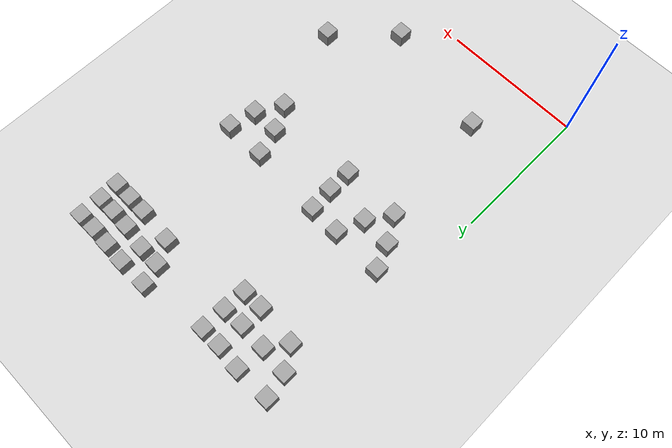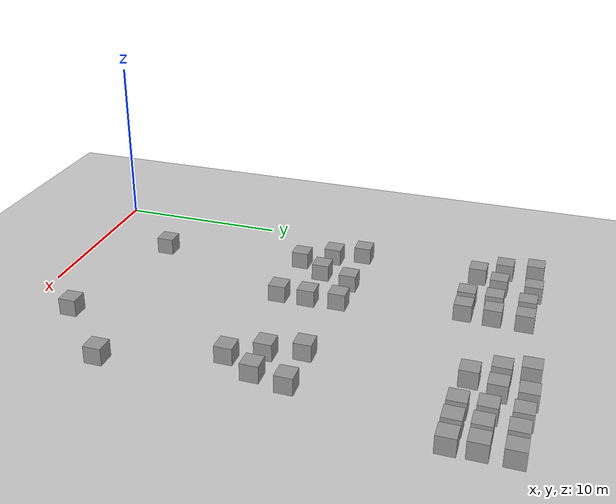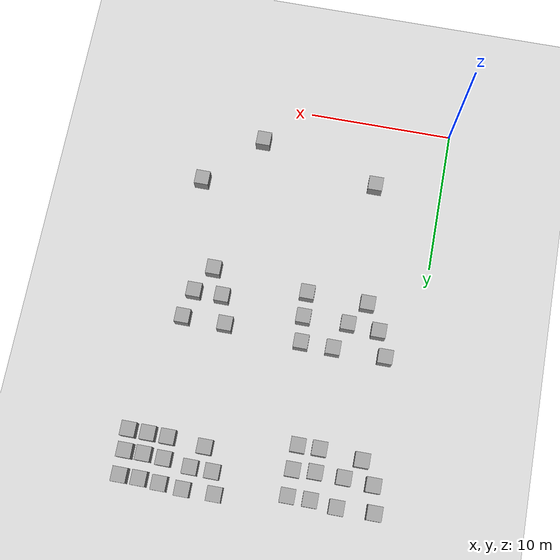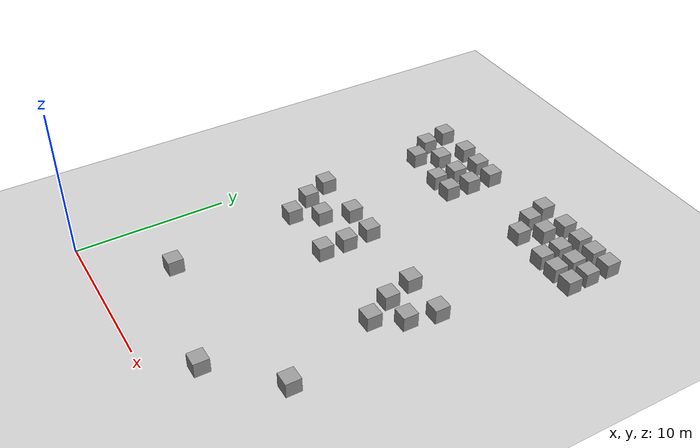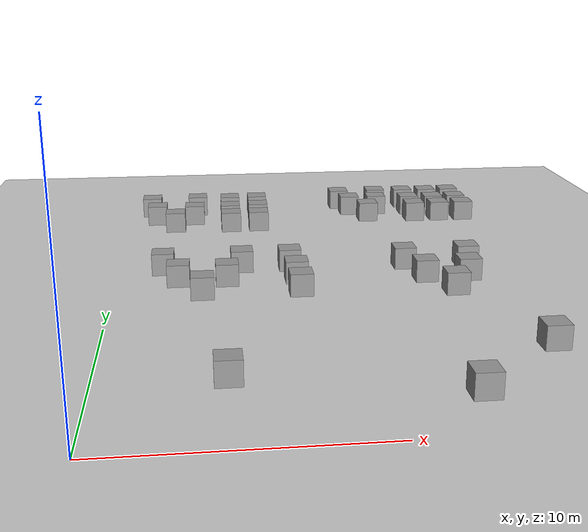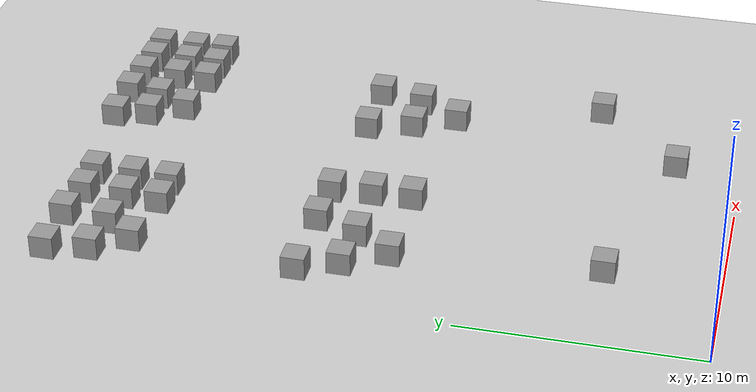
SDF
<sdf version="1.7">
 <world name="default">
  <model name="ground_plane">
   <static>1</static>
   <link name="link">
    <collision name="collision">
     <geometry><plane><normal>0 0 1</normal><size>100 100</size></plane></geometry>
     <surface>
      <contact><collide_bitmask>65535</collide_bitmask></contact>
      <friction><ode><mu>100</mu><mu2>50</mu2></ode></friction>
     </surface>
    </collision>
    <visual name="visual">
     <cast_shadows>0</cast_shadows>
     <geometry><plane><normal>0 0 1</normal><size>100 100</size></plane></geometry>
     <material>
      <script><uri>file://media/materials/scripts/gazebo.material</uri><name>Gazebo/Grey</name></script>
     </material>
    </visual>
   </link>
  </model>
  <model name="unit_box">
   <pose>4.67216 4.73049 0.499995 -1e-05 0 0</pose>
   <link name="link">
    <inertial>
     <mass>1</mass>
     <inertia>
      <ixx>0.166667</ixx>
      <ixy>0</ixy>
      <ixz>0</ixz>
      <iyy>0.166667</iyy>
      <iyz>0</iyz>
      <izz>0.166667</izz>
     </inertia>
    </inertial>
    <collision name="collision"><geometry><box><size>1 1 1</size></box></geometry></collision>
    <visual name="visual">
     <geometry><box><size>1 1 1</size></box></geometry>
     <material>
      <script><name>Gazebo/Grey</name><uri>file://media/materials/scripts/gazebo.material</uri></script>
     </material>
    </visual>
   </link>
  </model>
  <model name="unit_box_0">
   <pose>13.043 2.79597 0.499995 0 -1e-05 0</pose>
   <link name="link">
    <inertial>
     <mass>1</mass>
     <inertia>
      <ixx>0.166667</ixx>
      <ixy>0</ixy>
      <ixz>0</ixz>
      <iyy>0.166667</iyy>
      <iyz>0</iyz>
      <izz>0.166667</izz>
     </inertia>
    </inertial>
    <collision name="collision"><geometry><box><size>1 1 1</size></box></geometry></collision>
    <visual name="visual">
     <geometry><box><size>1 1 1</size></box></geometry>
     <material>
      <script><name>Gazebo/Grey</name><uri>file://media/materials/scripts/gazebo.material</uri></script>
     </material>
    </visual>
   </link>
  </model>
  <model name="unit_box_1">
   <pose>16.769 6.47067 0.499995 -1e-05 0 0</pose>
   <link name="link">
    <inertial>
     <mass>1</mass>
     <inertia>
      <ixx>0.166667</ixx>
      <ixy>0</ixy>
      <ixz>0</ixz>
      <iyy>0.166667</iyy>
      <iyz>0</iyz>
      <izz>0.166667</izz>
     </inertia>
    </inertial>
    <collision name="collision"><geometry><box><size>1 1 1</size></box></geometry></collision>
    <visual name="visual">
     <geometry><box><size>1 1 1</size></box></geometry>
     <material>
      <script><name>Gazebo/Grey</name><uri>file://media/materials/scripts/gazebo.material</uri></script>
     </material>
    </visual>
   </link>
  </model>
  <model name="unit_box_1_clone_9">
   <pose>13.1558 16.4643 0.499995 0 -1e-05 0</pose>
   <link name="link">
    <inertial>
     <mass>1</mass>
     <inertia>
      <ixx>0.166667</ixx>
      <ixy>0</ixy>
      <ixz>0</ixz>
      <iyy>0.166667</iyy>
      <iyz>0</iyz>
      <izz>0.166667</izz>
     </inertia>
    </inertial>
    <collision name="collision"><geometry><box><size>1 1 1</size></box></geometry></collision>
    <visual name="visual">
     <geometry><box><size>1 1 1</size></box></geometry>
     <material>
      <script><name>Gazebo/Grey</name><uri>file://media/materials/scripts/gazebo.material</uri></script>
     </material>
    </visual>
   </link>
  </model>
  <model name="unit_box_1_clone_10">
   <pose>16.0976 16.4593 0.499995 -1e-05 -0 0</pose>
   <link name="link">
    <inertial>
     <mass>1</mass>
     <inertia>
      <ixx>0.166667</ixx>
      <ixy>0</ixy>
      <ixz>0</ixz>
      <iyy>0.166667</iyy>
      <iyz>0</iyz>
      <izz>0.166667</izz>
     </inertia>
    </inertial>
    <collision name="collision"><geometry><box><size>1 1 1</size></box></geometry></collision>
    <visual name="visual">
     <geometry><box><size>1 1 1</size></box></geometry>
     <material>
      <script><name>Gazebo/Grey</name><uri>file://media/materials/scripts/gazebo.material</uri></script>
     </material>
    </visual>
   </link>
  </model>
  <model name="unit_box_1_clone_11">
   <pose>13.7413 14.5337 0.499995 0 -1e-05 0</pose>
   <link name="link">
    <inertial>
     <mass>1</mass>
     <inertia>
      <ixx>0.166667</ixx>
      <ixy>0</ixy>
      <ixz>0</ixz>
      <iyy>0.166667</iyy>
      <iyz>0</iyz>
      <izz>0.166667</izz>
     </inertia>
    </inertial>
    <collision name="collision"><geometry><box><size>1 1 1</size></box></geometry></collision>
    <visual name="visual">
     <geometry><box><size>1 1 1</size></box></geometry>
     <material>
      <script><name>Gazebo/Grey</name><uri>file://media/materials/scripts/gazebo.material</uri></script>
     </material>
    </visual>
   </link>
  </model>
  <model name="unit_box_1_clone_12">
   <pose>15.7018 14.5391 0.499995 -1e-05 0 0</pose>
   <link name="link">
    <inertial>
     <mass>1</mass>
     <inertia>
      <ixx>0.166667</ixx>
      <ixy>0</ixy>
      <ixz>0</ixz>
      <iyy>0.166667</iyy>
      <iyz>0</iyz>
      <izz>0.166667</izz>
     </inertia>
    </inertial>
    <collision name="collision"><geometry><box><size>1 1 1</size></box></geometry></collision>
    <visual name="visual">
     <geometry><box><size>1 1 1</size></box></geometry>
     <material>
      <script><name>Gazebo/Grey</name><uri>file://media/materials/scripts/gazebo.material</uri></script>
     </material>
    </visual>
   </link>
  </model>
  <model name="unit_box_1_clone_13">
   <pose>14.6841 12.7445 0.499995 0 -1e-05 0</pose>
   <link name="link">
    <inertial>
     <mass>1</mass>
     <inertia>
      <ixx>0.166667</ixx>
      <ixy>0</ixy>
      <ixz>0</ixz>
      <iyy>0.166667</iyy>
      <iyz>0</iyz>
      <izz>0.166667</izz>
     </inertia>
    </inertial>
    <collision name="collision"><geometry><box><size>1 1 1</size></box></geometry></collision>
    <visual name="visual">
     <geometry><box><size>1 1 1</size></box></geometry>
     <material>
      <script><name>Gazebo/Grey</name><uri>file://media/materials/scripts/gazebo.material</uri></script>
     </material>
    </visual>
   </link>
  </model>
  <model name="unit_box_1_clone_14">
   <pose>2.08488 16.7896 0.499995 -1e-05 -0 0</pose>
   <link name="link">
    <inertial>
     <mass>1</mass>
     <inertia>
      <ixx>0.166667</ixx>
      <ixy>0</ixy>
      <ixz>0</ixz>
      <iyy>0.166667</iyy>
      <iyz>0</iyz>
      <izz>0.166667</izz>
     </inertia>
    </inertial>
    <collision name="collision"><geometry><box><size>1 1 1</size></box></geometry></collision>
    <visual name="visual">
     <geometry><box><size>1 1 1</size></box></geometry>
     <material>
      <script><name>Gazebo/Grey</name><uri>file://media/materials/scripts/gazebo.material</uri></script>
     </material>
    </visual>
   </link>
  </model>
  <model name="unit_box_1_clone_15">
   <pose>2.79814 15.0909 0.499995 -1e-05 -0 0</pose>
   <link name="link">
    <inertial>
     <mass>1</mass>
     <inertia>
      <ixx>0.166667</ixx>
      <ixy>0</ixy>
      <ixz>0</ixz>
      <iyy>0.166667</iyy>
      <iyz>0</iyz>
      <izz>0.166667</izz>
     </inertia>
    </inertial>
    <collision name="collision"><geometry><box><size>1 1 1</size></box></geometry></collision>
    <visual name="visual">
     <geometry><box><size>1 1 1</size></box></geometry>
     <material>
      <script><name>Gazebo/Grey</name><uri>file://media/materials/scripts/gazebo.material</uri></script>
     </material>
    </visual>
   </link>
  </model>
  <model name="unit_box_1_clone_16">
   <pose>3.84151 13.3265 0.499995 -1e-05 -0 0</pose>
   <link name="link">
    <inertial>
     <mass>1</mass>
     <inertia>
      <ixx>0.166667</ixx>
      <ixy>0</ixy>
      <ixz>0</ixz>
      <iyy>0.166667</iyy>
      <iyz>0</iyz>
      <izz>0.166667</izz>
     </inertia>
    </inertial>
    <collision name="collision"><geometry><box><size>1 1 1</size></box></geometry></collision>
    <visual name="visual">
     <geometry><box><size>1 1 1</size></box></geometry>
     <material>
      <script><name>Gazebo/Grey</name><uri>file://media/materials/scripts/gazebo.material</uri></script>
     </material>
    </visual>
   </link>
  </model>
  <model name="unit_box_1_clone_17">
   <pose>4.9272 14.9407 0.499995 0 -1e-05 0</pose>
   <link name="link">
    <inertial>
     <mass>1</mass>
     <inertia>
      <ixx>0.166667</ixx>
      <ixy>0</ixy>
      <ixz>0</ixz>
      <iyy>0.166667</iyy>
      <iyz>0</iyz>
      <izz>0.166667</izz>
     </inertia>
    </inertial>
    <collision name="collision"><geometry><box><size>1 1 1</size></box></geometry></collision>
    <visual name="visual">
     <geometry><box><size>1 1 1</size></box></geometry>
     <material>
      <script><name>Gazebo/Grey</name><uri>file://media/materials/scripts/gazebo.material</uri></script>
     </material>
    </visual>
   </link>
  </model>
  <model name="unit_box_1_clone_18">
   <pose>5.65343 16.785 0.499995 -1e-05 0 0</pose>
   <link name="link">
    <inertial>
     <mass>1</mass>
     <inertia>
      <ixx>0.166667</ixx>
      <ixy>0</ixy>
      <ixz>0</ixz>
      <iyy>0.166667</iyy>
      <iyz>0</iyz>
      <izz>0.166667</izz>
     </inertia>
    </inertial>
    <collision name="collision"><geometry><box><size>1 1 1</size></box></geometry></collision>
    <visual name="visual">
     <geometry><box><size>1 1 1</size></box></geometry>
     <material>
      <script><name>Gazebo/Grey</name><uri>file://media/materials/scripts/gazebo.material</uri></script>
     </material>
    </visual>
   </link>
  </model>
  <model name="unit_box_1_clone_19">
   <pose>7.85351 16.7659 0.499995 0 -1e-05 0</pose>
   <link name="link">
    <inertial>
     <mass>1</mass>
     <inertia>
      <ixx>0.166667</ixx>
      <ixy>0</ixy>
      <ixz>0</ixz>
      <iyy>0.166667</iyy>
      <iyz>0</iyz>
      <izz>0.166667</izz>
     </inertia>
    </inertial>
    <collision name="collision"><geometry><box><size>1 1 1</size></box></geometry></collision>
    <visual name="visual">
     <geometry><box><size>1 1 1</size></box></geometry>
     <material>
      <script><name>Gazebo/Grey</name><uri>file://media/materials/scripts/gazebo.material</uri></script>
     </material>
    </visual>
   </link>
  </model>
  <model name="unit_box_1_clone_20">
   <pose>8 15 0.499995 -1e-05 -0 0</pose>
   <link name="link">
    <inertial>
     <mass>1</mass>
     <inertia>
      <ixx>0.166667</ixx>
      <ixy>0</ixy>
      <ixz>0</ixz>
      <iyy>0.166667</iyy>
      <iyz>0</iyz>
      <izz>0.166667</izz>
     </inertia>
    </inertial>
    <collision name="collision"><geometry><box><size>1 1 1</size></box></geometry></collision>
    <visual name="visual">
     <geometry><box><size>1 1 1</size></box></geometry>
     <material>
      <script><name>Gazebo/Grey</name><uri>file://media/materials/scripts/gazebo.material</uri></script>
     </material>
    </visual>
   </link>
  </model>
  <model name="unit_box_1_clone_21">
   <pose>8.03412 13.2963 0.499995 -1e-05 -0 0</pose>
   <link name="link">
    <inertial>
     <mass>1</mass>
     <inertia>
      <ixx>0.166667</ixx>
      <ixy>0</ixy>
      <ixz>0</ixz>
      <iyy>0.166667</iyy>
      <iyz>0</iyz>
      <izz>0.166667</izz>
     </inertia>
    </inertial>
    <collision name="collision"><geometry><box><size>1 1 1</size></box></geometry></collision>
    <visual name="visual">
     <geometry><box><size>1 1 1</size></box></geometry>
     <material>
      <script><name>Gazebo/Grey</name><uri>file://media/materials/scripts/gazebo.material</uri></script>
     </material>
    </visual>
   </link>
  </model>
  <model name="unit_box_1_clone_22">
   <pose>1.1822 27.0628 0.499995 0 -1e-05 0</pose>
   <link name="link">
    <inertial>
     <mass>1</mass>
     <inertia>
      <ixx>0.166667</ixx>
      <ixy>0</ixy>
      <ixz>0</ixz>
      <iyy>0.166667</iyy>
      <iyz>0</iyz>
      <izz>0.166667</izz>
     </inertia>
    </inertial>
    <collision name="collision"><geometry><box><size>1 1 1</size></box></geometry></collision>
    <visual name="visual">
     <geometry><box><size>1 1 1</size></box></geometry>
     <material>
      <script><name>Gazebo/Grey</name><uri>file://media/materials/scripts/gazebo.material</uri></script>
     </material>
    </visual>
   </link>
  </model>
  <model name="unit_box_1_clone_23">
   <pose>1.52923 25.3163 0.499995 -1e-05 0 0</pose>
   <link name="link">
    <inertial>
     <mass>1</mass>
     <inertia>
      <ixx>0.166667</ixx>
      <ixy>0</ixy>
      <ixz>0</ixz>
      <iyy>0.166667</iyy>
      <iyz>0</iyz>
      <izz>0.166667</izz>
     </inertia>
    </inertial>
    <collision name="collision"><geometry><box><size>1 1 1</size></box></geometry></collision>
    <visual name="visual">
     <geometry><box><size>1 1 1</size></box></geometry>
     <material>
      <script><name>Gazebo/Grey</name><uri>file://media/materials/scripts/gazebo.material</uri></script>
     </material>
    </visual>
   </link>
  </model>
  <model name="unit_box_1_clone_24">
   <pose>2.51056 23.8512 0.499995 0 -1e-05 0</pose>
   <link name="link">
    <inertial>
     <mass>1</mass>
     <inertia>
      <ixx>0.166667</ixx>
      <ixy>0</ixy>
      <ixz>0</ixz>
      <iyy>0.166667</iyy>
      <iyz>0</iyz>
      <izz>0.166667</izz>
     </inertia>
    </inertial>
    <collision name="collision"><geometry><box><size>1 1 1</size></box></geometry></collision>
    <visual name="visual">
     <geometry><box><size>1 1 1</size></box></geometry>
     <material>
      <script><name>Gazebo/Grey</name><uri>file://media/materials/scripts/gazebo.material</uri></script>
     </material>
    </visual>
   </link>
  </model>
  <model name="unit_box_1_clone_25">
   <pose>3.50091 25.185 0.499995 0 -1e-05 0</pose>
   <link name="link">
    <inertial>
     <mass>1</mass>
     <inertia>
      <ixx>0.166667</ixx>
      <ixy>0</ixy>
      <ixz>0</ixz>
      <iyy>0.166667</iyy>
      <iyz>0</iyz>
      <izz>0.166667</izz>
     </inertia>
    </inertial>
    <collision name="collision"><geometry><box><size>1 1 1</size></box></geometry></collision>
    <visual name="visual">
     <geometry><box><size>1 1 1</size></box></geometry>
     <material>
      <script><name>Gazebo/Grey</name><uri>file://media/materials/scripts/gazebo.material</uri></script>
     </material>
    </visual>
   </link>
  </model>
  <model name="unit_box_1_clone_26">
   <pose>3.66779 27.1444 0.499995 0 -1e-05 0</pose>
   <link name="link">
    <inertial>
     <mass>1</mass>
     <inertia>
      <ixx>0.166667</ixx>
      <ixy>0</ixy>
      <ixz>0</ixz>
      <iyy>0.166667</iyy>
      <iyz>0</iyz>
      <izz>0.166667</izz>
     </inertia>
    </inertial>
    <collision name="collision"><geometry><box><size>1 1 1</size></box></geometry></collision>
    <visual name="visual">
     <geometry><box><size>1 1 1</size></box></geometry>
     <material>
      <script><name>Gazebo/Grey</name><uri>file://media/materials/scripts/gazebo.material</uri></script>
     </material>
    </visual>
   </link>
  </model>
  <model name="unit_box_1_clone_27">
   <pose>5.42955 26.9683 0.499995 -1e-05 -0 0</pose>
   <link name="link">
    <inertial>
     <mass>1</mass>
     <inertia>
      <ixx>0.166667</ixx>
      <ixy>0</ixy>
      <ixz>0</ixz>
      <iyy>0.166667</iyy>
      <iyz>0</iyz>
      <izz>0.166667</izz>
     </inertia>
    </inertial>
    <collision name="collision"><geometry><box><size>1 1 1</size></box></geometry></collision>
    <visual name="visual">
     <geometry><box><size>1 1 1</size></box></geometry>
     <material>
      <script><name>Gazebo/Grey</name><uri>file://media/materials/scripts/gazebo.material</uri></script>
     </material>
    </visual>
   </link>
  </model>
  <model name="unit_box_1_clone_28">
   <pose>5.3997 25.152 0.499995 0 -1e-05 0</pose>
   <link name="link">
    <inertial>
     <mass>1</mass>
     <inertia>
      <ixx>0.166667</ixx>
      <ixy>0</ixy>
      <ixz>0</ixz>
      <iyy>0.166667</iyy>
      <iyz>0</iyz>
      <izz>0.166667</izz>
     </inertia>
    </inertial>
    <collision name="collision"><geometry><box><size>1 1 1</size></box></geometry></collision>
    <visual name="visual">
     <geometry><box><size>1 1 1</size></box></geometry>
     <material>
      <script><name>Gazebo/Grey</name><uri>file://media/materials/scripts/gazebo.material</uri></script>
     </material>
    </visual>
   </link>
  </model>
  <model name="unit_box_1_clone_29">
   <pose>5.39116 23.6058 0.499995 0 -1e-05 0</pose>
   <link name="link">
    <inertial>
     <mass>1</mass>
     <inertia>
      <ixx>0.166667</ixx>
      <ixy>0</ixy>
      <ixz>0</ixz>
      <iyy>0.166667</iyy>
      <iyz>0</iyz>
      <izz>0.166667</izz>
     </inertia>
    </inertial>
    <collision name="collision"><geometry><box><size>1 1 1</size></box></geometry></collision>
    <visual name="visual">
     <geometry><box><size>1 1 1</size></box></geometry>
     <material>
      <script><name>Gazebo/Grey</name><uri>file://media/materials/scripts/gazebo.material</uri></script>
     </material>
    </visual>
   </link>
  </model>
  <model name="unit_box_1_clone_30">
   <pose>6.9273 26.9779 0.499995 0 -1e-05 0</pose>
   <link name="link">
    <inertial>
     <mass>1</mass>
     <inertia>
      <ixx>0.166667</ixx>
      <ixy>0</ixy>
      <ixz>0</ixz>
      <iyy>0.166667</iyy>
      <iyz>0</iyz>
      <izz>0.166667</izz>
     </inertia>
    </inertial>
    <collision name="collision"><geometry><box><size>1 1 1</size></box></geometry></collision>
    <visual name="visual">
     <geometry><box><size>1 1 1</size></box></geometry>
     <material>
      <script><name>Gazebo/Grey</name><uri>file://media/materials/scripts/gazebo.material</uri></script>
     </material>
    </visual>
   </link>
  </model>
  <model name="unit_box_1_clone_31">
   <pose>6.89119 25.2526 0.499995 0 -1e-05 0</pose>
   <link name="link">
    <inertial>
     <mass>1</mass>
     <inertia>
      <ixx>0.166667</ixx>
      <ixy>0</ixy>
      <ixz>0</ixz>
      <iyy>0.166667</iyy>
      <iyz>0</iyz>
      <izz>0.166667</izz>
     </inertia>
    </inertial>
    <collision name="collision"><geometry><box><size>1 1 1</size></box></geometry></collision>
    <visual name="visual">
     <geometry><box><size>1 1 1</size></box></geometry>
     <material>
      <script><name>Gazebo/Grey</name><uri>file://media/materials/scripts/gazebo.material</uri></script>
     </material>
    </visual>
   </link>
  </model>
  <model name="unit_box_1_clone_32">
   <pose>6.832 23.6315 0.499995 -1e-05 -0 0</pose>
   <link name="link">
    <inertial>
     <mass>1</mass>
     <inertia>
      <ixx>0.166667</ixx>
      <ixy>0</ixy>
      <ixz>0</ixz>
      <iyy>0.166667</iyy>
      <iyz>0</iyz>
      <izz>0.166667</izz>
     </inertia>
    </inertial>
    <collision name="collision"><geometry><box><size>1 1 1</size></box></geometry></collision>
    <visual name="visual">
     <geometry><box><size>1 1 1</size></box></geometry>
     <material>
      <script><name>Gazebo/Grey</name><uri>file://media/materials/scripts/gazebo.material</uri></script>
     </material>
    </visual>
   </link>
  </model>
  <model name="unit_box_1_clone_33">
   <pose>11.6368 27.7329 0.499995 0 -1e-05 0</pose>
   <link name="link">
    <inertial>
     <mass>1</mass>
     <inertia>
      <ixx>0.166667</ixx>
      <ixy>0</ixy>
      <ixz>0</ixz>
      <iyy>0.166667</iyy>
      <iyz>0</iyz>
      <izz>0.166667</izz>
     </inertia>
    </inertial>
    <collision name="collision"><geometry><box><size>1 1 1</size></box></geometry></collision>
    <visual name="visual">
     <geometry><box><size>1 1 1</size></box></geometry>
     <material>
      <script><name>Gazebo/Grey</name><uri>file://media/materials/scripts/gazebo.material</uri></script>
     </material>
    </visual>
   </link>
  </model>
  <model name="unit_box_1_clone_34">
   <pose>12.0485 26.3197 0.499995 0 -1e-05 0</pose>
   <link name="link">
    <inertial>
     <mass>1</mass>
     <inertia>
      <ixx>0.166667</ixx>
      <ixy>0</ixy>
      <ixz>0</ixz>
      <iyy>0.166667</iyy>
      <iyz>0</iyz>
      <izz>0.166667</izz>
     </inertia>
    </inertial>
    <collision name="collision"><geometry><box><size>1 1 1</size></box></geometry></collision>
    <visual name="visual">
     <geometry><box><size>1 1 1</size></box></geometry>
     <material>
      <script><name>Gazebo/Grey</name><uri>file://media/materials/scripts/gazebo.material</uri></script>
     </material>
    </visual>
   </link>
  </model>
  <model name="unit_box_1_clone_35">
   <pose>12.8539 24.8405 0.499995 0 -1e-05 0</pose>
   <link name="link">
    <inertial>
     <mass>1</mass>
     <inertia>
      <ixx>0.166667</ixx>
      <ixy>0</ixy>
      <ixz>0</ixz>
      <iyy>0.166667</iyy>
      <iyz>0</iyz>
      <izz>0.166667</izz>
     </inertia>
    </inertial>
    <collision name="collision"><geometry><box><size>1 1 1</size></box></geometry></collision>
    <visual name="visual">
     <geometry><box><size>1 1 1</size></box></geometry>
     <material>
      <script><name>Gazebo/Grey</name><uri>file://media/materials/scripts/gazebo.material</uri></script>
     </material>
    </visual>
   </link>
  </model>
  <model name="unit_box_1_clone_36">
   <pose>13.5412 26.3055 0.499995 -1e-05 -0 0</pose>
   <link name="link">
    <inertial>
     <mass>1</mass>
     <inertia>
      <ixx>0.166667</ixx>
      <ixy>0</ixy>
      <ixz>0</ixz>
      <iyy>0.166667</iyy>
      <iyz>0</iyz>
      <izz>0.166667</izz>
     </inertia>
    </inertial>
    <collision name="collision"><geometry><box><size>1 1 1</size></box></geometry></collision>
    <visual name="visual">
     <geometry><box><size>1 1 1</size></box></geometry>
     <material>
      <script><name>Gazebo/Grey</name><uri>file://media/materials/scripts/gazebo.material</uri></script>
     </material>
    </visual>
   </link>
  </model>
  <model name="unit_box_1_clone_37">
   <pose>13.747 27.7773 0.499995 -1e-05 0 0</pose>
   <link name="link">
    <inertial>
     <mass>1</mass>
     <inertia>
      <ixx>0.166667</ixx>
      <ixy>0</ixy>
      <ixz>0</ixz>
      <iyy>0.166667</iyy>
      <iyz>0</iyz>
      <izz>0.166667</izz>
     </inertia>
    </inertial>
    <collision name="collision"><geometry><box><size>1 1 1</size></box></geometry></collision>
    <visual name="visual">
     <geometry><box><size>1 1 1</size></box></geometry>
     <material>
      <script><name>Gazebo/Grey</name><uri>file://media/materials/scripts/gazebo.material</uri></script>
     </material>
    </visual>
   </link>
  </model>
  <model name="unit_box_1_clone_38">
   <pose>15.3133 27.6838 0.499995 -1e-05 0 0</pose>
   <link name="link">
    <inertial>
     <mass>1</mass>
     <inertia>
      <ixx>0.166667</ixx>
      <ixy>0</ixy>
      <ixz>0</ixz>
      <iyy>0.166667</iyy>
      <iyz>0</iyz>
      <izz>0.166667</izz>
     </inertia>
    </inertial>
    <collision name="collision"><geometry><box><size>1 1 1</size></box></geometry></collision>
    <visual name="visual">
     <geometry><box><size>1 1 1</size></box></geometry>
     <material>
      <script><name>Gazebo/Grey</name><uri>file://media/materials/scripts/gazebo.material</uri></script>
     </material>
    </visual>
   </link>
  </model>
  <model name="unit_box_1_clone_39">
   <pose>15.3516 26.0623 0.499995 0 -1e-05 0</pose>
   <link name="link">
    <inertial>
     <mass>1</mass>
     <inertia>
      <ixx>0.166667</ixx>
      <ixy>0</ixy>
      <ixz>0</ixz>
      <iyy>0.166667</iyy>
      <iyz>0</iyz>
      <izz>0.166667</izz>
     </inertia>
    </inertial>
    <collision name="collision"><geometry><box><size>1 1 1</size></box></geometry></collision>
    <visual name="visual">
     <geometry><box><size>1 1 1</size></box></geometry>
     <material>
      <script><name>Gazebo/Grey</name><uri>file://media/materials/scripts/gazebo.material</uri></script>
     </material>
    </visual>
   </link>
  </model>
  <model name="unit_box_1_clone_40">
   <pose>15.3917 24.636 0.499995 -1e-05 0 0</pose>
   <link name="link">
    <inertial>
     <mass>1</mass>
     <inertia>
      <ixx>0.166667</ixx>
      <ixy>0</ixy>
      <ixz>0</ixz>
      <iyy>0.166667</iyy>
      <iyz>0</iyz>
      <izz>0.166667</izz>
     </inertia>
    </inertial>
    <collision name="collision"><geometry><box><size>1 1 1</size></box></geometry></collision>
    <visual name="visual">
     <geometry><box><size>1 1 1</size></box></geometry>
     <material>
      <script><name>Gazebo/Grey</name><uri>file://media/materials/scripts/gazebo.material</uri></script>
     </material>
    </visual>
   </link>
  </model>
  <model name="unit_box_1_clone_41">
   <pose>16.675 27.6092 0.499995 -1e-05 -0 0</pose>
   <link name="link">
    <inertial>
     <mass>1</mass>
     <inertia>
      <ixx>0.166667</ixx>
      <ixy>0</ixy>
      <ixz>0</ixz>
      <iyy>0.166667</iyy>
      <iyz>0</iyz>
      <izz>0.166667</izz>
     </inertia>
    </inertial>
    <collision name="collision"><geometry><box><size>1 1 1</size></box></geometry></collision>
    <visual name="visual">
     <geometry><box><size>1 1 1</size></box></geometry>
     <material>
      <script><name>Gazebo/Grey</name><uri>file://media/materials/scripts/gazebo.material</uri></script>
     </material>
    </visual>
   </link>
  </model>
  <model name="unit_box_1_clone_42">
   <pose>16.7278 25.9912 0.499995 -1e-05 0 0</pose>
   <link name="link">
    <inertial>
     <mass>1</mass>
     <inertia>
      <ixx>0.166667</ixx>
      <ixy>0</ixy>
      <ixz>0</ixz>
      <iyy>0.166667</iyy>
      <iyz>0</iyz>
      <izz>0.166667</izz>
     </inertia>
    </inertial>
    <collision name="collision"><geometry><box><size>1 1 1</size></box></geometry></collision>
    <visual name="visual">
     <geometry><box><size>1 1 1</size></box></geometry>
     <material>
      <script><name>Gazebo/Grey</name><uri>file://media/materials/scripts/gazebo.material</uri></script>
     </material>
    </visual>
   </link>
  </model>
  <model name="unit_box_1_clone_43">
   <pose>16.7281 24.6193 0.499995 0 -1e-05 0</pose>
   <link name="link">
    <inertial>
     <mass>1</mass>
     <inertia>
      <ixx>0.166667</ixx>
      <ixy>0</ixy>
      <ixz>0</ixz>
      <iyy>0.166667</iyy>
      <iyz>0</iyz>
      <izz>0.166667</izz>
     </inertia>
    </inertial>
    <collision name="collision"><geometry><box><size>1 1 1</size></box></geometry></collision>
    <visual name="visual">
     <geometry><box><size>1 1 1</size></box></geometry>
     <material>
      <script><name>Gazebo/Grey</name><uri>file://media/materials/scripts/gazebo.material</uri></script>
     </material>
    </visual>
   </link>
  </model>
  <model name="unit_box_1_clone_44">
   <pose>17.9829 27.6151 0.499995 -1e-05 0 0</pose>
   <link name="link">
    <inertial>
     <mass>1</mass>
     <inertia>
      <ixx>0.166667</ixx>
      <ixy>0</ixy>
      <ixz>0</ixz>
      <iyy>0.166667</iyy>
      <iyz>0</iyz>
      <izz>0.166667</izz>
     </inertia>
    </inertial>
    <collision name="collision"><geometry><box><size>1 1 1</size></box></geometry></collision>
    <visual name="visual">
     <geometry><box><size>1 1 1</size></box></geometry>
     <material>
      <script><name>Gazebo/Grey</name><uri>file://media/materials/scripts/gazebo.material</uri></script>
     </material>
    </visual>
   </link>
  </model>
  <model name="unit_box_1_clone_45">
   <pose>17.9893 26 0.499995 -1e-05 0 0</pose>
   <link name="link">
    <inertial>
     <mass>1</mass>
     <inertia>
      <ixx>0.166667</ixx>
      <ixy>0</ixy>
      <ixz>0</ixz>
      <iyy>0.166667</iyy>
      <iyz>0</iyz>
      <izz>0.166667</izz>
     </inertia>
    </inertial>
    <collision name="collision"><geometry><box><size>1 1 1</size></box></geometry></collision>
    <visual name="visual">
     <geometry><box><size>1 1 1</size></box></geometry>
     <material>
      <script><name>Gazebo/Grey</name><uri>file://media/materials/scripts/gazebo.material</uri></script>
     </material>
    </visual>
   </link>
  </model>
  <model name="unit_box_1_clone_46">
   <pose>18.0507 24.6061 0.499995 0 -1e-05 0</pose>
   <link name="link">
    <inertial>
     <mass>1</mass>
     <inertia>
      <ixx>0.166667</ixx>
      <ixy>0</ixy>
      <ixz>0</ixz>
      <iyy>0.166667</iyy>
      <iyz>0</iyz>
      <izz>0.166667</izz>
     </inertia>
    </inertial>
    <collision name="collision"><geometry><box><size>1 1 1</size></box></geometry></collision>
    <visual name="visual">
     <geometry><box><size>1 1 1</size></box></geometry>
     <material>
      <script><name>Gazebo/Grey</name><uri>file://media/materials/scripts/gazebo.material</uri></script>
     </material>
    </visual>
   </link>
  </model>
 </world>
</sdf>
